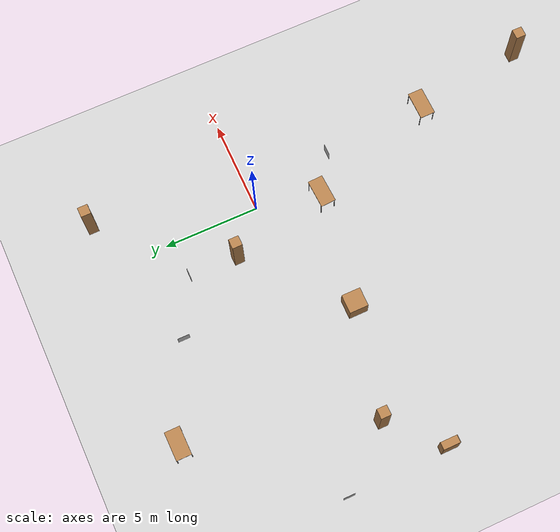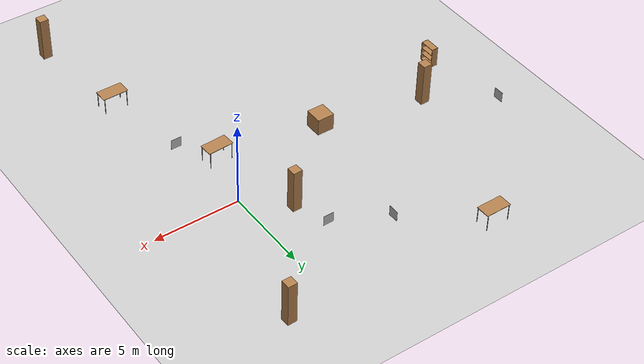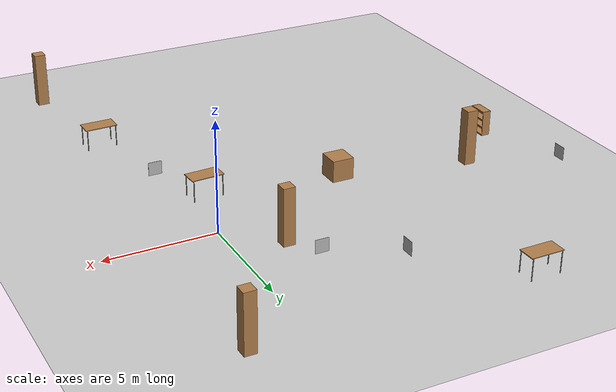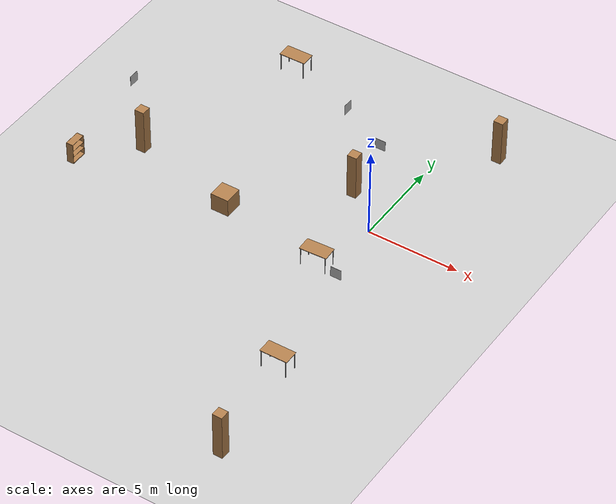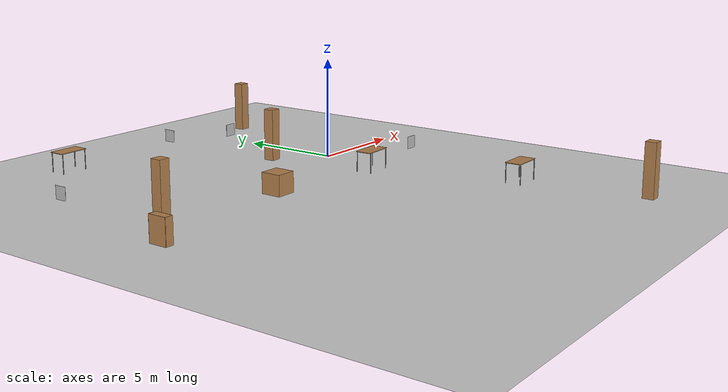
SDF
<sdf version="1.7">
 <world name="default">
  <model name="ground_plane">
   <static>1</static>
   <link name="link">
    <collision name="collision">
     <geometry><plane><normal>0 0 1</normal><size>25 25</size></plane></geometry>
     <surface><friction><ode><mu>100</mu><mu2>50</mu2></ode></friction></surface>
    </collision>
    <visual name="visual">
     <cast_shadows>0</cast_shadows>
     <geometry><plane><normal>0 0 1</normal><size>25 25</size></plane></geometry>
     <material>
      <script><uri>file://media/materials/scripts/gazebo.material</uri><name>Gazebo/Grey</name></script>
     </material>
    </visual>
   </link>
   <link name="startflag">
    <pose>0 0 0.115 0 -0 0</pose>
    <inertial>
     <mass>0.39</mass>
     <inertia><ixx>0.00058</ixx><ixy>0</ixy><ixz>0</ixz><iyy>0.00058</iyy><iyz>0</iyz><izz>0.00019</izz></inertia>
    </inertial>
    <collision name="collision"><geometry><box><size>1 1 0.01</size></box></geometry></collision>
    <visual name="visual">
     <geometry><box><size>1 1 0.01</size></box></geometry>
     <material>
      <script>
       <uri>model://apriltag/materials/scripts</uri>
       <uri>model://apriltag/materials/textures</uri>
       <name>startflag/Diffuse</name>
      </script>
     </material>
    </visual>
   </link>
  </model>
  <model name="table">
   <static>0</static>
   <link name="link">
    <collision name="surface">
     <pose>0 0 1 0 -0 0</pose>
     <geometry><box><size>1.5 0.8 0.03</size></box></geometry>
     <surface><friction><ode><mu>0.6</mu><mu2>0.6</mu2></ode></friction></surface>
    </collision>
    <visual name="visual1">
     <pose>0 0 1 0 -0 0</pose>
     <geometry><box><size>1.5 0.8 0.03</size></box></geometry>
     <material>
      <script><uri>file://media/materials/scripts/gazebo.material</uri><name>Gazebo/Wood</name></script>
     </material>
    </visual>
    <collision name="front_left_leg">
     <pose>0.68 0.38 0.5 0 -0 0</pose>
     <geometry><cylinder><radius>0.02</radius><length>1</length></cylinder></geometry>
    </collision>
    <visual name="front_left_leg">
     <pose>0.68 0.38 0.5 0 -0 0</pose>
     <geometry><cylinder><radius>0.02</radius><length>1</length></cylinder></geometry>
     <material>
      <script><uri>file://media/materials/scripts/gazebo.material</uri><name>Gazebo/Grey</name></script>
     </material>
    </visual>
    <collision name="front_right_leg">
     <pose>0.68 -0.38 0.5 0 -0 0</pose>
     <geometry><cylinder><radius>0.02</radius><length>1</length></cylinder></geometry>
    </collision>
    <visual name="front_right_leg">
     <pose>0.68 -0.38 0.5 0 -0 0</pose>
     <geometry><cylinder><radius>0.02</radius><length>1</length></cylinder></geometry>
     <material>
      <script><uri>file://media/materials/scripts/gazebo.material</uri><name>Gazebo/Grey</name></script>
     </material>
    </visual>
    <collision name="back_right_leg">
     <pose>-0.68 -0.38 0.5 0 -0 0</pose>
     <geometry><cylinder><radius>0.02</radius><length>1</length></cylinder></geometry>
    </collision>
    <visual name="back_right_leg">
     <pose>-0.68 -0.38 0.5 0 -0 0</pose>
     <geometry><cylinder><radius>0.02</radius><length>1</length></cylinder></geometry>
     <material>
      <script><uri>file://media/materials/scripts/gazebo.material</uri><name>Gazebo/Grey</name></script>
     </material>
    </visual>
    <collision name="back_left_leg">
     <pose>-0.68 0.38 0.5 0 -0 0</pose>
     <geometry><cylinder><radius>0.02</radius><length>1</length></cylinder></geometry>
    </collision>
    <visual name="back_left_leg">
     <pose>-0.68 0.38 0.5 0 -0 0</pose>
     <geometry><cylinder><radius>0.02</radius><length>1</length></cylinder></geometry>
     <material>
      <script><uri>file://media/materials/scripts/gazebo.material</uri><name>Gazebo/Grey</name></script>
     </material>
    </visual>
    <inertial>
     <inertia><ixx>1</ixx><ixy>0</ixy><ixz>0</ixz><iyy>1</iyy><iyz>0</iyz><izz>1</izz></inertia>
     <mass>1</mass>
    </inertial>
   </link>
   <pose>-0.865495 -3.31669 -1e-06 0 1e-06 0.048608</pose>
  </model>
  <model name="unit_box_0">
   <pose>-6.82909 -2.37625 0.5 0 -0 -0.000758</pose>
   <link name="link">
    <inertial>
     <mass>1</mass>
     <inertia>
      <ixx>0.166667</ixx>
      <ixy>0</ixy>
      <ixz>0</ixz>
      <iyy>0.166667</iyy>
      <iyz>0</iyz>
      <izz>0.166667</izz>
     </inertia>
    </inertial>
    <collision name="collision"><geometry><box><size>0.999996 1 1</size></box></geometry></collision>
    <visual name="visual">
     <geometry><box><size>0.999996 1 1</size></box></geometry>
     <material>
      <script><uri>file://media/materials/scripts/gazebo.material</uri><name>Gazebo/Wood</name></script>
     </material>
    </visual>
   </link>
   <static>0</static>
  </model>
  <model name="unit_box_0_clone">
   <pose>-2.11662 1.93382 1.29125 1e-06 -1e-06 0.016634</pose>
   <link name="link">
    <inertial>
     <mass>1</mass>
     <inertia>
      <ixx>0.166667</ixx>
      <ixy>0</ixy>
      <ixz>0</ixz>
      <iyy>0.166667</iyy>
      <iyz>0</iyz>
      <izz>0.166667</izz>
     </inertia>
    </inertial>
    <collision name="collision"><geometry><box><size>0.52404 0.528614 2.5825</size></box></geometry></collision>
    <visual name="visual">
     <geometry><box><size>0.52404 0.528614 2.5825</size></box></geometry>
     <material>
      <script><uri>file://media/materials/scripts/gazebo.material</uri><name>Gazebo/Wood</name></script>
     </material>
    </visual>
   </link>
   <static>0</static>
  </model>
  <model name="unit_box_0_clone_0">
   <pose>2.50137 8.06866 1.29125 1e-06 -2e-06 0.004898</pose>
   <link name="link">
    <inertial>
     <mass>1</mass>
     <inertia>
      <ixx>0.166667</ixx>
      <ixy>0</ixy>
      <ixz>0</ixz>
      <iyy>0.166667</iyy>
      <iyz>0</iyz>
      <izz>0.166667</izz>
     </inertia>
    </inertial>
    <collision name="collision"><geometry><box><size>0.52404 0.528614 2.5825</size></box></geometry></collision>
    <visual name="visual">
     <geometry><box><size>0.52404 0.528614 2.5825</size></box></geometry>
     <material>
      <script><uri>file://media/materials/scripts/gazebo.material</uri><name>Gazebo/Wood</name></script>
     </material>
    </visual>
   </link>
   <static>0</static>
  </model>
  <model name="unit_box_0_clone_2">
   <pose>-12.7051 -1.03226 1.29125 -1e-06 2e-06 0.000536</pose>
   <link name="link">
    <inertial>
     <mass>1</mass>
     <inertia>
      <ixx>0.166667</ixx>
      <ixy>0</ixy>
      <ixz>0</ixz>
      <iyy>0.166667</iyy>
      <iyz>0</iyz>
      <izz>0.166667</izz>
     </inertia>
    </inertial>
    <collision name="collision"><geometry><box><size>0.52404 0.528614 2.5825</size></box></geometry></collision>
    <visual name="visual">
     <geometry><box><size>0.52404 0.528614 2.5825</size></box></geometry>
     <material>
      <script><uri>file://media/materials/scripts/gazebo.material</uri><name>Gazebo/Wood</name></script>
     </material>
    </visual>
   </link>
   <static>0</static>
  </model>
  <model name="static_apriltag_0">
   <link name="link">
    <pose>0 0 0 0 1.57 0</pose>
    <inertial>
     <mass>0.39</mass>
     <inertia><ixx>0.00058</ixx><ixy>0</ixy><ixz>0</ixz><iyy>0.00058</iyy><iyz>0</iyz><izz>0.00019</izz></inertia>
    </inertial>
    <collision name="collision"><geometry><box><size>0.6 0.6 0.01</size></box></geometry></collision>
    <visual name="visual">
     <geometry><box><size>0.6 0.6 0.01</size></box></geometry>
     <material>
      <script>
       <uri>model://apriltag/materials/scripts</uri>
       <uri>model://apriltag/materials/textures</uri>
       <name>apriltag/Diffuse0</name>
      </script>
     </material>
    </visual>
    <gravity>0</gravity>
   </link>
   <pose>-5.15598 6.07171 1.2 0 -0 0</pose>
   <static>0</static>
   <pose>1.90787 0.108649 0 0 -0 0</pose>
  </model>
  <model name="static_apriltag_3">
   <link name="link">
    <pose>0 0 0 -1.57 1.57 -0</pose>
    <inertial>
     <mass>0.39</mass>
     <inertia><ixx>0.00058</ixx><ixy>0</ixy><ixz>0</ixz><iyy>0.00058</iyy><iyz>0</iyz><izz>0.00019</izz></inertia>
    </inertial>
    <collision name="collision"><geometry><box><size>0.6 0.6 0.01</size></box></geometry></collision>
    <visual name="visual">
     <geometry><box><size>0.6 0.6 0.01</size></box></geometry>
     <material>
      <script>
       <uri>model://apriltag/materials/scripts</uri>
       <uri>model://apriltag/materials/textures</uri>
       <name>apriltag/Diffuse3</name>
      </script>
     </material>
    </visual>
    <gravity>0</gravity>
   </link>
   <pose>-2.28773 4.5791 1.2 0 -0 0</pose>
   <static>0</static>
   <pose>3.65849 3.02317 0 0 -0 0</pose>
  </model>
  <model name="static_apriltag_6">
   <link name="link">
    <pose>0 0 0 -1.57 1.57 -0</pose>
    <inertial>
     <mass>0.39</mass>
     <inertia><ixx>0.00058</ixx><ixy>0</ixy><ixz>0</ixz><iyy>0.00058</iyy><iyz>0</iyz><izz>0.00019</izz></inertia>
    </inertial>
    <collision name="collision"><geometry><box><size>0.6 0.6 0.01</size></box></geometry></collision>
    <visual name="visual">
     <geometry><box><size>0.6 0.6 0.01</size></box></geometry>
     <material>
      <script>
       <uri>model://apriltag/materials/scripts</uri>
       <uri>model://apriltag/materials/textures</uri>
       <name>apriltag/Diffuse6</name>
      </script>
     </material>
    </visual>
    <gravity>0</gravity>
   </link>
   <pose>0.928554 -4.42191 1.2 0 -0 0</pose>
   <static>0</static>
   <pose>3.43144 4.34187 0 0 -0 0</pose>
  </model>
  <model name="static_apriltag_7">
   <link name="link">
    <pose>0 0 0 0 1.57 0</pose>
    <inertial>
     <mass>0.39</mass>
     <inertia><ixx>0.00058</ixx><ixy>0</ixy><ixz>0</ixz><iyy>0.00058</iyy><iyz>0</iyz><izz>0.00019</izz></inertia>
    </inertial>
    <collision name="collision"><geometry><box><size>0.6 0.6 0.01</size></box></geometry></collision>
    <visual name="visual">
     <geometry><box><size>0.6 0.6 0.01</size></box></geometry>
     <material>
      <script>
       <uri>model://apriltag/materials/scripts</uri>
       <uri>model://apriltag/materials/textures</uri>
       <name>apriltag/Diffuse7</name>
      </script>
     </material>
    </visual>
    <gravity>0</gravity>
   </link>
   <pose>-15.426 1.98205 1.19905 -1.5708 -0.000796 0</pose>
   <static>0</static>
   <pose>3.12393 4.47604 0 0 -0 0</pose>
  </model>
  <model name="bookshelf">
   <static>1</static>
   <link name="link">
    <inertial><mass>1</mass></inertial>
    <collision name="back">
     <pose>0 0.005 0.6 0 -0 0</pose>
     <geometry><box><size>0.9 0.01 1.2</size></box></geometry>
    </collision>
    <visual name="visual1">
     <pose>0 0.005 0.6 0 -0 0</pose>
     <geometry><box><size>0.9 0.01 1.2</size></box></geometry>
     <material>
      <script><uri>file://media/materials/scripts/gazebo.material</uri><name>Gazebo/Wood</name></script>
     </material>
    </visual>
    <collision name="left_side">
     <pose>0.45 -0.195 0.6 0 -0 0</pose>
     <geometry><box><size>0.02 0.4 1.2</size></box></geometry>
    </collision>
    <visual name="visual2">
     <pose>0.45 -0.195 0.6 0 -0 0</pose>
     <geometry><box><size>0.02 0.4 1.2</size></box></geometry>
     <material>
      <script><uri>file://media/materials/scripts/gazebo.material</uri><name>Gazebo/Wood</name></script>
     </material>
    </visual>
    <collision name="right_side">
     <pose>-0.45 -0.195 0.6 0 -0 0</pose>
     <geometry><box><size>0.02 0.4 1.2</size></box></geometry>
    </collision>
    <visual name="visual3">
     <pose>-0.45 -0.195 0.6 0 -0 0</pose>
     <geometry><box><size>0.02 0.4 1.2</size></box></geometry>
     <material>
      <script><uri>file://media/materials/scripts/gazebo.material</uri><name>Gazebo/Wood</name></script>
     </material>
    </visual>
    <collision name="bottom">
     <pose>0 -0.195 0.03 0 -0 0</pose>
     <geometry><box><size>0.88 0.4 0.06</size></box></geometry>
    </collision>
    <visual name="visual4">
     <pose>0 -0.195 0.03 0 -0 0</pose>
     <geometry><box><size>0.88 0.4 0.06</size></box></geometry>
     <material>
      <script><uri>file://media/materials/scripts/gazebo.material</uri><name>Gazebo/Wood</name></script>
     </material>
    </visual>
    <collision name="top">
     <pose>0 -0.195 1.19 0 -0 0</pose>
     <geometry><box><size>0.88 0.4 0.02</size></box></geometry>
    </collision>
    <visual name="visual5">
     <pose>0 -0.195 1.19 0 -0 0</pose>
     <geometry><box><size>0.88 0.4 0.02</size></box></geometry>
     <material>
      <script><uri>file://media/materials/scripts/gazebo.material</uri><name>Gazebo/Wood</name></script>
     </material>
    </visual>
    <collision name="low_shelf">
     <pose>0 -0.195 0.43 0 -0 0</pose>
     <geometry><box><size>0.88 0.4 0.02</size></box></geometry>
    </collision>
    <visual name="visual6">
     <pose>0 -0.195 0.43 0 -0 0</pose>
     <geometry><box><size>0.88 0.4 0.02</size></box></geometry>
     <material>
      <script><uri>file://media/materials/scripts/gazebo.material</uri><name>Gazebo/Wood</name></script>
     </material>
    </visual>
    <collision name="high_shelf">
     <pose>0 -0.195 0.8 0 -0 0</pose>
     <geometry><box><size>0.88 0.4 0.02</size></box></geometry>
    </collision>
    <visual name="visual7">
     <pose>0 -0.195 0.8 0 -0 0</pose>
     <geometry><box><size>0.88 0.4 0.02</size></box></geometry>
     <material>
      <script><uri>file://media/materials/scripts/gazebo.material</uri><name>Gazebo/Wood</name></script>
     </material>
    </visual>
   </link>
   <pose>-15.3069 -3.46598 0 0 -0 1.57</pose>
  </model>
  <model name="unit_box_0_clone_0_clone_0">
   <pose>2.35453 -16.0887 1.29125 1e-06 -2e-06 8.5e-05</pose>
   <link name="link">
    <inertial>
     <mass>1</mass>
     <inertia>
      <ixx>0.166667</ixx>
      <ixy>0</ixy>
      <ixz>0</ixz>
      <iyy>0.166667</iyy>
      <iyz>0</iyz>
      <izz>0.166667</izz>
     </inertia>
    </inertial>
    <collision name="collision"><geometry><box><size>0.52404 0.528614 2.5825</size></box></geometry></collision>
    <visual name="visual">
     <geometry><box><size>0.52404 0.528614 2.5825</size></box></geometry>
     <material>
      <script><uri>file://media/materials/scripts/gazebo.material</uri><name>Gazebo/Wood</name></script>
     </material>
    </visual>
   </link>
   <static>0</static>
  </model>
  <model name="table_clone">
   <static>0</static>
   <link name="link">
    <collision name="surface">
     <pose>0 0 1 0 -0 0</pose>
     <geometry><box><size>1.5 0.8 0.03</size></box></geometry>
     <surface><friction><ode><mu>0.6</mu><mu2>0.6</mu2></ode></friction></surface>
    </collision>
    <visual name="visual1">
     <pose>0 0 1 0 -0 0</pose>
     <geometry><box><size>1.5 0.8 0.03</size></box></geometry>
     <material>
      <script><uri>file://media/materials/scripts/gazebo.material</uri><name>Gazebo/Wood</name></script>
     </material>
    </visual>
    <collision name="front_left_leg">
     <pose>0.68 0.38 0.5 0 -0 0</pose>
     <geometry><cylinder><radius>0.02</radius><length>1</length></cylinder></geometry>
    </collision>
    <visual name="front_left_leg">
     <pose>0.68 0.38 0.5 0 -0 0</pose>
     <geometry><cylinder><radius>0.02</radius><length>1</length></cylinder></geometry>
     <material>
      <script><uri>file://media/materials/scripts/gazebo.material</uri><name>Gazebo/Grey</name></script>
     </material>
    </visual>
    <collision name="front_right_leg">
     <pose>0.68 -0.38 0.5 0 -0 0</pose>
     <geometry><cylinder><radius>0.02</radius><length>1</length></cylinder></geometry>
    </collision>
    <visual name="front_right_leg">
     <pose>0.68 -0.38 0.5 0 -0 0</pose>
     <geometry><cylinder><radius>0.02</radius><length>1</length></cylinder></geometry>
     <material>
      <script><uri>file://media/materials/scripts/gazebo.material</uri><name>Gazebo/Grey</name></script>
     </material>
    </visual>
    <collision name="back_right_leg">
     <pose>-0.68 -0.38 0.5 0 -0 0</pose>
     <geometry><cylinder><radius>0.02</radius><length>1</length></cylinder></geometry>
    </collision>
    <visual name="back_right_leg">
     <pose>-0.68 -0.38 0.5 0 -0 0</pose>
     <geometry><cylinder><radius>0.02</radius><length>1</length></cylinder></geometry>
     <material>
      <script><uri>file://media/materials/scripts/gazebo.material</uri><name>Gazebo/Grey</name></script>
     </material>
    </visual>
    <collision name="back_left_leg">
     <pose>-0.68 0.38 0.5 0 -0 0</pose>
     <geometry><cylinder><radius>0.02</radius><length>1</length></cylinder></geometry>
    </collision>
    <visual name="back_left_leg">
     <pose>-0.68 0.38 0.5 0 -0 0</pose>
     <geometry><cylinder><radius>0.02</radius><length>1</length></cylinder></geometry>
     <material>
      <script><uri>file://media/materials/scripts/gazebo.material</uri><name>Gazebo/Grey</name></script>
     </material>
    </visual>
    <inertial>
     <inertia><ixx>1</ixx><ixy>0</ixy><ixz>0</ixz><iyy>1</iyy><iyz>0</iyz><izz>1</izz></inertia>
     <mass>1</mass>
    </inertial>
   </link>
   <pose>-9.7514 8.31723 -9e-06 0 -1e-06 0.009184</pose>
  </model>
  <model name="table_clone_0">
   <static>0</static>
   <link name="link">
    <collision name="surface">
     <pose>0 0 1 0 -0 0</pose>
     <geometry><box><size>1.5 0.8 0.03</size></box></geometry>
     <surface><friction><ode><mu>0.6</mu><mu2>0.6</mu2></ode></friction></surface>
    </collision>
    <visual name="visual1">
     <pose>0 0 1 0 -0 0</pose>
     <geometry><box><size>1.5 0.8 0.03</size></box></geometry>
     <material>
      <script><uri>file://media/materials/scripts/gazebo.material</uri><name>Gazebo/Wood</name></script>
     </material>
    </visual>
    <collision name="front_left_leg">
     <pose>0.68 0.38 0.5 0 -0 0</pose>
     <geometry><cylinder><radius>0.02</radius><length>1</length></cylinder></geometry>
    </collision>
    <visual name="front_left_leg">
     <pose>0.68 0.38 0.5 0 -0 0</pose>
     <geometry><cylinder><radius>0.02</radius><length>1</length></cylinder></geometry>
     <material>
      <script><uri>file://media/materials/scripts/gazebo.material</uri><name>Gazebo/Grey</name></script>
     </material>
    </visual>
    <collision name="front_right_leg">
     <pose>0.68 -0.38 0.5 0 -0 0</pose>
     <geometry><cylinder><radius>0.02</radius><length>1</length></cylinder></geometry>
    </collision>
    <visual name="front_right_leg">
     <pose>0.68 -0.38 0.5 0 -0 0</pose>
     <geometry><cylinder><radius>0.02</radius><length>1</length></cylinder></geometry>
     <material>
      <script><uri>file://media/materials/scripts/gazebo.material</uri><name>Gazebo/Grey</name></script>
     </material>
    </visual>
    <collision name="back_right_leg">
     <pose>-0.68 -0.38 0.5 0 -0 0</pose>
     <geometry><cylinder><radius>0.02</radius><length>1</length></cylinder></geometry>
    </collision>
    <visual name="back_right_leg">
     <pose>-0.68 -0.38 0.5 0 -0 0</pose>
     <geometry><cylinder><radius>0.02</radius><length>1</length></cylinder></geometry>
     <material>
      <script><uri>file://media/materials/scripts/gazebo.material</uri><name>Gazebo/Grey</name></script>
     </material>
    </visual>
    <collision name="back_left_leg">
     <pose>-0.68 0.38 0.5 0 -0 0</pose>
     <geometry><cylinder><radius>0.02</radius><length>1</length></cylinder></geometry>
    </collision>
    <visual name="back_left_leg">
     <pose>-0.68 0.38 0.5 0 -0 0</pose>
     <geometry><cylinder><radius>0.02</radius><length>1</length></cylinder></geometry>
     <material>
      <script><uri>file://media/materials/scripts/gazebo.material</uri><name>Gazebo/Grey</name></script>
     </material>
    </visual>
    <inertial>
     <inertia><ixx>1</ixx><ixy>0</ixy><ixz>0</ixz><iyy>1</iyy><iyz>0</iyz><izz>1</izz></inertia>
     <mass>1</mass>
    </inertial>
   </link>
   <pose>1.45416 -10.1358 -1e-06 -1e-06 -0 0.0092</pose>
  </model>
 </world>
</sdf>
